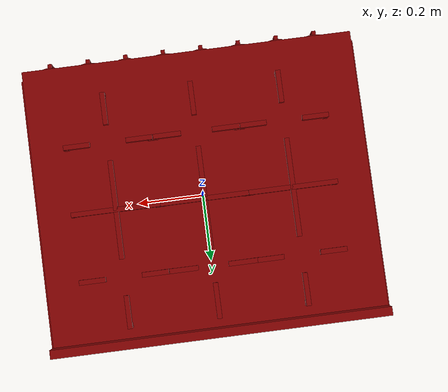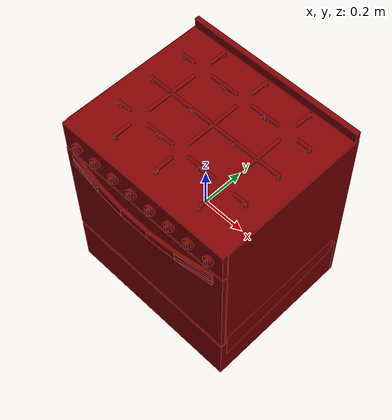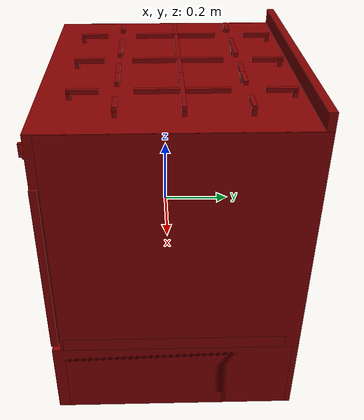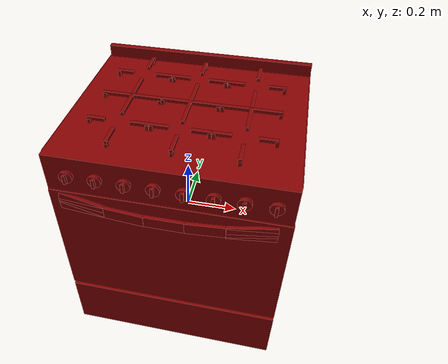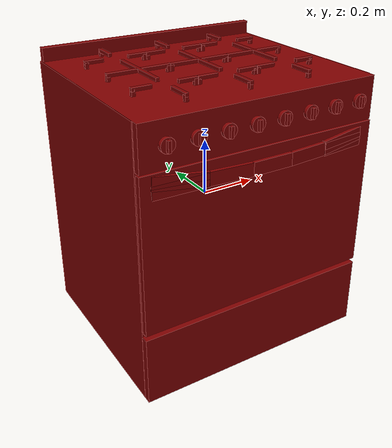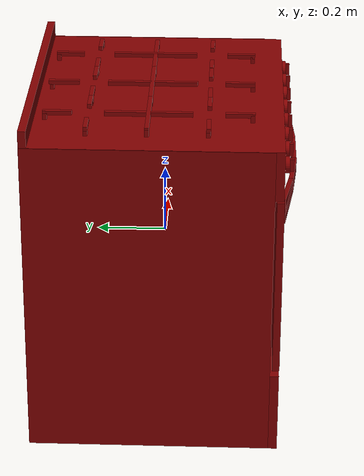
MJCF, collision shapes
<?xml version='1.0' encoding='UTF-8'?>
<mujoco model="model">
  <option timestep="0.002" gravity="0.0 0.0 -9.81"/>
  <compiler angle="radian"/>
  <asset>
    <mesh file="visuals/knob_front_center.obj" name="knob_front_center_vis"/>
    <mesh file="visuals/knob_front_left.obj" name="knob_front_left_vis"/>
    <mesh file="visuals/knob_front_right.obj" name="knob_front_right_vis"/>
    <mesh file="visuals/knob_rear_center.obj" name="knob_rear_center_vis"/>
    <mesh file="visuals/knob_rear_left.obj" name="knob_rear_left_vis"/>
    <mesh file="visuals/knob_rear_right.obj" name="knob_rear_right_vis"/>
    <mesh file="visuals/Body001.obj" name="Body001_vis"/>
    <mesh file="visuals/Door001.obj" name="Door001_vis"/>
    <mesh file="visuals/Door001_Clear.obj" name="Door001_Clear_vis"/>
    <mesh file="visuals/Knob001.obj" name="Knob001_vis"/>
    <mesh file="visuals/Knob002.obj" name="Knob002_vis"/>
    <mesh file="visuals/Shelf001.obj" name="Shelf001_vis"/>
    <mesh file="visuals/Shelf002.obj" name="Shelf002_vis"/>
    <texture file="visuals/T_BC001.png" name="Body001_material" type="2d"/>
    <material name="Body001_material" rgba="1 1 1 1.0" texture="Body001_material" shininess="0.4472135901451111" specular="2"/>
    <texture file="visuals/T_BC001.png" name="knob_front_center_material" type="2d"/>
    <material name="knob_front_center_material" rgba="1 1 1 1.0" texture="knob_front_center_material" shininess="0.4472135901451111" specular="0.3103448502657381"/>
    <texture file="visuals/T_BC001.png" name="knob_front_left_material" type="2d"/>
    <material name="knob_front_left_material" rgba="1 1 1 1.0" texture="knob_front_left_material" shininess="0.4472135901451111" specular="0.3103448502657381"/>
    <texture file="visuals/T_BC001.png" name="knob_front_right_material" type="2d"/>
    <material name="knob_front_right_material" rgba="1 1 1 1.0" texture="knob_front_right_material" shininess="0.4472135901451111" specular="0.3103448502657381"/>
    <texture file="visuals/T_BC001.png" name="knob_rear_center_material" type="2d"/>
    <material name="knob_rear_center_material" rgba="1 1 1 1.0" texture="knob_rear_center_material" shininess="0.4472135901451111" specular="0.3103448502657381"/>
    <texture file="visuals/T_BC001.png" name="knob_rear_left_material" type="2d"/>
    <material name="knob_rear_left_material" rgba="1 1 1 1.0" texture="knob_rear_left_material" shininess="0.4472135901451111" specular="0.3103448502657381"/>
    <texture file="visuals/T_BC001.png" name="knob_rear_right_material" type="2d"/>
    <material name="knob_rear_right_material" rgba="1 1 1 1.0" texture="knob_rear_right_material" shininess="0.4472135901451111" specular="0.3103448502657381"/>
    <texture file="visuals/T_BC001.png" name="Door001_material" type="2d"/>
    <material name="Door001_material" rgba="1 1 1 1.0" texture="Door001_material" shininess="0.4472135901451111" specular="1"/>
    <texture file="visuals/T_BC001.png" name="Door001_Clear_material" type="2d"/>
    <material name="Door001_Clear_material" rgba="1 1 1 0.5" texture="Door001_Clear_material" shininess="0.5" specular="0.3103448502657381"/>
    <texture file="visuals/T_BC001.png" name="Knob001_material" type="2d"/>
    <material name="Knob001_material" rgba="1 1 1 1.0" texture="Knob001_material" shininess="0.4472135901451111" specular="0.3103448502657381"/>
    <texture file="visuals/T_BC001.png" name="Knob002_material" type="2d"/>
    <material name="Knob002_material" rgba="1 1 1 1.0" texture="Knob002_material" shininess="0.4472135901451111" specular="0.3103448502657381"/>
    <texture file="visuals/T_BC001.png" name="Shelf001_material" type="2d"/>
    <material name="Shelf001_material" rgba="1 1 1 1.0" texture="Shelf001_material" shininess="0.4472135901451111" specular="2"/>
    <texture file="visuals/T_BC001.png" name="Shelf002_material" type="2d"/>
    <material name="Shelf002_material" rgba="1 1 1 1.0" texture="Shelf002_material" shininess="0.4472135901451111" specular="2"/>
  </asset>
  <default>
    <default class="visual">
      <geom conaffinity="0" contype="0" group="1" type="mesh"/>
    </default>
    <default class="collision">
      <geom group="0" rgba="0.5 0 0 0.5"/>
    </default>
    <default class="spawn">
      <geom group="0" rgba="1 1 1 0.5" contype="0" conaffinity="0"/>
      <site group="0" rgba="1 1 1 0.5"/>
    </default>
    <default class="region">
      <geom group="1" conaffinity="0" contype="0" rgba="0 1 0 0"/>
    </default>
  </default>
  <worldbody>
    <body>
      <body name="object">
        <geom mesh="Body001_vis" type="mesh" solimp="0.998 0.998 0.001" solref="0.001 1" friction="0.95 0.3 0.1" class="visual" material="Body001_material"/>
        <geom class="collision" type="box" pos="0.364420622587204 -0.07858794927597046 0.11972210556268692" size="0.018662435933947563 0.18144045770168304 0.0023834460880607367" quat="1.0 0.0 0.0 0.0" density="1000.0"/>
        <geom class="collision" type="box" pos="0.364420622587204 -0.07858794927597046 0.08483462780714035" size="0.018662435933947563 0.18144045770168304 0.0023834460880607367" quat="1.0 0.0 0.0 0.0" density="1000.0"/>
        <geom class="collision" type="box" pos="0.364420622587204 -0.07858794927597046 0.01778459921479225" size="0.018662435933947563 0.18144045770168304 0.0023834460880607367" quat="1.0 0.0 0.0 0.0" density="1000.0"/>
        <geom class="collision" type="box" pos="0.364420622587204 -0.07858794927597046 -0.049496907740831375" size="0.018662435933947563 0.18144045770168304 0.0023834460880607367" quat="1.0 0.0 0.0 0.0" density="1000.0"/>
        <geom class="collision" type="box" pos="-0.36823025345802307 -0.07858794927597046 0.11972210556268692" size="0.018662435933947563 0.18144045770168304 0.0023834460880607367" quat="1.0 0.0 0.0 0.0" density="1000.0"/>
        <geom class="collision" type="box" pos="-0.36823025345802307 -0.07858794927597046 0.01778459921479225" size="0.018662435933947563 0.18144045770168304 0.0023834460880607367" quat="1.0 0.0 0.0 0.0" density="1000.0"/>
        <geom class="collision" type="box" pos="-0.36823025345802307 -0.07858794927597046 -0.049496907740831375" size="0.018662435933947563 0.18144045770168304 0.0023834460880607367" quat="1.0 0.0 0.0 0.0" density="1000.0"/>
        <geom class="collision" type="box" pos="-0.366976261138916 -0.07858794927597046 0.08483462780714035" size="0.018662435933947563 0.18144045770168304 0.0023834460880607367" quat="1.0 0.0 0.0 0.0" density="1000.0"/>
        <geom class="collision" type="box" pos="-0.40804946422576904 0.032975368201732635 -0.02279110811650753" size="0.015683388337492943 0.34789374470710754 0.4722433090209961" quat="1.0 0.0 0.0 0.0" density="1000.0"/>
        <geom class="collision" type="box" pos="0.40709713101387024 0.03266469016671181 -0.022676851600408554" size="0.016239916905760765 0.3475830554962158 0.47212931513786316" quat="1.0 0.0 0.0 0.0" density="1000.0"/>
        <geom class="collision" type="box" pos="-0.0004993081092834473 0.011970818042755127 0.37617436051368713" size="0.42072170972824097 0.35166284441947937 0.07339657098054886" quat="1.0 0.0 0.0 0.0" density="1000.0"/>
        <geom class="collision" type="box" pos="0.0012759566307067871 0.3703576326370239 0.0013292527291923761" size="0.42017021775245667 0.010949005372822285 0.4954916536808014" quat="1.0 0.0 0.0 0.0" density="1000.0"/>
        <geom class="collision" type="box" pos="-2.117455005645752e-05 0.01138758659362793 -0.37255796790122986" size="0.42352452874183655 0.35225921869277954 0.1225961297750473" quat="1.0 0.0 0.0 0.0" density="1000.0"/>
        <geom class="collision" type="box" pos="-2.117455005645752e-05 0.01612207293510437 -0.3514452874660492" size="0.42352452874183655 0.32334092259407043 0.14354214072227478" quat="1.0 0.0 0.0 0.0" density="1000.0"/>
        <geom class="collision" type="box" pos="0.0012759556993842125 0.3319109082221985 -0.026910508051514626" size="0.42015162110328674 0.027977995574474335 0.46796897053718567" quat="1.0 0.0 0.0 0.0" density="1000.0"/>
        <geom class="collision" type="box" pos="-0.3896397054195404 -0.07899713516235352 0.03456701338291168" size="0.004897843115031719 0.18065761029720306 0.1435653269290924" quat="1.0 0.0 0.0 0.0" density="1000.0"/>
        <geom class="collision" type="box" pos="0.3866812288761139 -0.07899713516235352 0.034567102789878845" size="0.00489784637466073 0.18065761029720306 0.14356538653373718" quat="1.0 0.0 0.0 0.0" density="1000.0"/>
        <geom class="collision" type="box" pos="-0.0004993081092834473 0.011970818042755127 0.31831592321395874" size="0.3940332233905792 0.3293551504611969 0.046260178089141846" quat="1.0 0.0 0.0 0.0" density="1000.0"/>
        <geom class="collision" type="box" pos="-0.30060309171676636 -0.1308376044034958 0.470270574092865" size="0.03320878744125366 0.006129132118076086 0.006129132118076086" quat="1.0 0.0 0.0 0.0" density="1000.0"/>
        <geom class="collision" type="box" pos="-0.32762521505355835 -0.1308376044034958 0.4601711928844452" size="0.006129133980721235 0.006129132118076086 0.010349145159125328" quat="1.0 0.0 0.0 0.0" density="1000.0"/>
        <geom class="collision" type="box" pos="-0.22193697094917297 -0.21709318459033966 0.470270574092865" size="0.006129132118076086 0.040935102850198746 0.006129132118076086" quat="1.0 0.0 0.0 0.0" density="1000.0"/>
        <geom class="collision" type="box" pos="-0.22193697094917297 -0.25184163451194763 0.4601711928844452" size="0.006129133049398661 0.006129132118076086 0.010349145159125328" quat="1.0 0.0 0.0 0.0" density="1000.0"/>
        <geom class="collision" type="box" pos="-0.143728107213974 -0.1308376044034958 0.470270574092865" size="0.03320879116654396 0.006129143293946981 0.006129132118076086" quat="1.0 0.0 0.0 0.0" density="1000.0"/>
        <geom class="collision" type="box" pos="-0.11670596897602081 -0.1308376044034958 0.4601711928844452" size="0.006129135377705097 0.006129134446382523 0.010349145159125328" quat="1.0 0.0 0.0 0.0" density="1000.0"/>
        <geom class="collision" type="box" pos="0.07366536557674408 -0.1308376044034958 0.470270574092865" size="0.03491848334670067 0.006129044573754072 0.006129033397883177" quat="1.0 0.0 0.0 0.0" density="1000.0"/>
        <geom class="collision" type="box" pos="-0.10274513065814972 -0.1308376044034958 0.4601711928844452" size="0.006129137240350246 0.0061291358433663845 0.010349145159125328" quat="1.0 0.0 0.0 0.0" density="1000.0"/>
        <geom class="collision" type="box" pos="0.10326054692268372 -0.1308376044034958 0.4601711928844452" size="0.006129137240350246 0.0061291358433663845 0.010349145159125328" quat="1.0 0.0 0.0 0.0" density="1000.0"/>
        <geom class="collision" type="box" pos="0.11666572093963623 -0.1308376044034958 0.4601711928844452" size="0.006129137240350246 0.0061291358433663845 0.010349145159125328" quat="1.0 0.0 0.0 0.0" density="1000.0"/>
        <geom class="collision" type="box" pos="0.14367786049842834 -0.1308375746011734 0.470270574092865" size="0.033241767436265945 0.006129029206931591 0.006129014305770397" quat="1.0 0.0 0.0 0.0" density="1000.0"/>
        <geom class="collision" type="box" pos="0.3280797600746155 -0.1308376044034958 0.4601711928844452" size="0.006129139102995396 0.006129138171672821 0.010349145159125328" quat="1.0 0.0 0.0 0.0" density="1000.0"/>
        <geom class="collision" type="box" pos="0.30106762051582336 -0.13083763420581818 0.470270574092865" size="0.033241767436265945 0.006129029672592878 0.006129020359367132" quat="1.0 0.0 0.0 0.0" density="1000.0"/>
        <geom class="collision" type="box" pos="0.2219962477684021 -0.21709318459033966 0.470270574092865" size="0.006129132118076086 0.040935102850198746 0.006129132118076086" quat="1.0 0.0 0.0 0.0" density="1000.0"/>
        <geom class="collision" type="box" pos="0.2219962477684021 -0.25184163451194763 0.4601711928844452" size="0.006129133049398661 0.006129132118076086 0.010349145159125328" quat="1.0 0.0 0.0 0.0" density="1000.0"/>
        <geom class="collision" type="box" pos="-0.00018443413136992604 -0.21558159589767456 0.470270574092865" size="0.006129133049398661 0.042494818568229675 0.006129029206931591" quat="1.0 0.0 0.0 0.0" density="1000.0"/>
        <geom class="collision" type="box" pos="-0.00018443167209625244 -0.25184163451194763 0.4601711928844452" size="0.006129133049398661 0.006129132118076086 0.010349145159125328" quat="1.0 0.0 0.0 0.0" density="1000.0"/>
        <geom class="collision" type="box" pos="-0.32762521505355835 0.03805355727672577 0.4601711928844452" size="0.006129133980721235 0.006129132118076086 0.010349145159125328" quat="1.0 0.0 0.0 0.0" density="1000.0"/>
        <geom class="collision" type="box" pos="-0.22209370136260986 0.03805355727672577 0.470270574092865" size="0.11157438904047012 0.006129143293946981 0.006129132118076086" quat="1.0 0.0 0.0 0.0" density="1000.0"/>
        <geom class="collision" type="box" pos="-0.11670596897602081 0.03805355727672577 0.4601711928844452" size="0.006129135377705097 0.006129134446382523 0.010349145159125328" quat="1.0 0.0 0.0 0.0" density="1000.0"/>
        <geom class="collision" type="box" pos="-0.22149862349033356 0.038120053708553314 0.470270574092865" size="0.006129167508333921 0.12360835820436478 0.006129132118076086" quat="1.0 0.0 0.0 0.0" density="1000.0"/>
        <geom class="collision" type="box" pos="-0.10468415915966034 0.03805355727672577 0.4601711928844452" size="0.006129133980721235 0.006129132118076086 0.010349145159125328" quat="1.0 0.0 0.0 0.0" density="1000.0"/>
        <geom class="collision" type="box" pos="0.0028169474098831415 0.03805353865027428 0.470270574092865" size="0.11284878849983215 0.006129076238721609 0.006129068322479725" quat="1.0 0.0 0.0 0.0" density="1000.0"/>
        <geom class="collision" type="box" pos="0.10274618864059448 0.03805355727672577 0.4601711928844452" size="0.006129135377705097 0.006129134446382523 0.010349145159125328" quat="1.0 0.0 0.0 0.0" density="1000.0"/>
        <geom class="collision" type="box" pos="0.0003596395254135132 0.2928311824798584 0.470270574092865" size="0.00612907949835062 0.04435423016548157 0.006129132118076086" quat="1.0 0.0 0.0 0.0" density="1000.0"/>
        <geom class="collision" type="box" pos="0.11737358570098877 0.03805355727672577 0.4601711928844452" size="0.006129133980721235 0.006129132118076086 0.010349145159125328" quat="1.0 0.0 0.0 0.0" density="1000.0"/>
        <geom class="collision" type="box" pos="0.22290509939193726 0.03805355727672577 0.470270574092865" size="0.11157438904047012 0.006129143293946981 0.006129132118076086" quat="1.0 0.0 0.0 0.0" density="1000.0"/>
        <geom class="collision" type="box" pos="0.3282928466796875 0.03805355727672577 0.4601711928844452" size="0.006129135377705097 0.006129134446382523 0.010349145159125328" quat="1.0 0.0 0.0 0.0" density="1000.0"/>
        <geom class="collision" type="box" pos="0.22208474576473236 0.038120053708553314 0.470270574092865" size="0.006129167508333921 0.12360835820436478 0.006129132118076086" quat="1.0 0.0 0.0 0.0" density="1000.0"/>
        <geom class="collision" type="box" pos="0.3010576367378235 0.20676814019680023 0.470270574092865" size="0.03320879116654396 0.006129143293946981 0.006129132118076086" quat="1.0 0.0 0.0 0.0" density="1000.0"/>
        <geom class="collision" type="box" pos="0.3280797600746155 0.20676811039447784 0.4601711928844452" size="0.006129135377705097 0.006129134446382523 0.010349145159125328" quat="1.0 0.0 0.0 0.0" density="1000.0"/>
        <geom class="collision" type="box" pos="0.2223915159702301 0.2930237054824829 0.470270574092865" size="0.006129145622253418 0.040935106575489044 0.006129132118076086" quat="1.0 0.0 0.0 0.0" density="1000.0"/>
        <geom class="collision" type="box" pos="0.2223915159702301 0.3277721405029297 0.4601711928844452" size="0.00612913491204381 0.006129134446382523 0.010349145159125328" quat="1.0 0.0 0.0 0.0" density="1000.0"/>
        <geom class="collision" type="box" pos="0.14418265223503113 0.20676814019680023 0.470270574092865" size="0.03320879116654396 0.0061291540041565895 0.006129132118076086" quat="1.0 0.0 0.0 0.0" density="1000.0"/>
        <geom class="collision" type="box" pos="0.11716051399707794 0.20676814019680023 0.4601711928844452" size="0.006129137240350246 0.0061291358433663845 0.010349145159125328" quat="1.0 0.0 0.0 0.0" density="1000.0"/>
        <geom class="collision" type="box" pos="0.07314195483922958 0.20676816999912262 0.470270574092865" size="0.03625023365020752 0.006129126064479351 0.006129097193479538" quat="1.0 0.0 0.0 0.0" density="1000.0"/>
        <geom class="collision" type="box" pos="0.10319967567920685 0.20676814019680023 0.4601711928844452" size="0.006129139102995396 0.006129138171672821 0.010349145159125328" quat="1.0 0.0 0.0 0.0" density="1000.0"/>
        <geom class="collision" type="box" pos="-0.10280600190162659 0.20676816999912262 0.4601711928844452" size="0.006129139102995396 0.006129138171672821 0.010349145159125328" quat="1.0 0.0 0.0 0.0" density="1000.0"/>
        <geom class="collision" type="box" pos="-0.1162111759185791 0.20676816999912262 0.4601711928844452" size="0.006129139102995396 0.006129138171672821 0.010349145159125328" quat="1.0 0.0 0.0 0.0" density="1000.0"/>
        <geom class="collision" type="box" pos="-0.1432233303785324 0.20676814019680023 0.470270574092865" size="0.033241767436265945 0.006129108835011721 0.006129099056124687" quat="1.0 0.0 0.0 0.0" density="1000.0"/>
        <geom class="collision" type="box" pos="-0.32762521505355835 0.20676816999912262 0.4601711928844452" size="0.006129140965640545 0.00612914003431797 0.010349145159125328" quat="1.0 0.0 0.0 0.0" density="1000.0"/>
        <geom class="collision" type="box" pos="-0.30061307549476624 0.2067681849002838 0.470270574092865" size="0.033241771161556244 0.006129109300673008 0.006129105109721422" quat="1.0 0.0 0.0 0.0" density="1000.0"/>
        <geom class="collision" type="box" pos="-0.22154170274734497 0.2930237650871277 0.470270574092865" size="0.006129145622253418 0.040935106575489044 0.006129132118076086" quat="1.0 0.0 0.0 0.0" density="1000.0"/>
        <geom class="collision" type="box" pos="-0.22154170274734497 0.32777220010757446 0.4601711928844452" size="0.00612913491204381 0.006129134446382523 0.010349145159125328" quat="1.0 0.0 0.0 0.0" density="1000.0"/>
        <geom class="collision" type="box" pos="-0.0004001929482910782 0.03584869205951691 0.470270574092865" size="0.006129175424575806 0.12906001508235931 0.006129113957285881" quat="1.0 0.0 0.0 0.0" density="1000.0"/>
        <geom class="collision" type="box" pos="0.0006389819900505245 0.3277721703052521 0.4601711928844452" size="0.00612913491204381 0.006129134446382523 0.010349145159125328" quat="1.0 0.0 0.0 0.0" density="1000.0"/>
        <geom class="collision" type="cylinder" pos="-0.221892312169075 -0.13137805461883545 0.4425704777240753" size="0.03738420829176903 0.006588577758520842" quat="1.0 0.0 0.0 0.0" density="1000.0"/>
        <geom class="collision" type="cylinder" pos="0.22195810079574585 -0.13078992068767548 0.44160130620002747" size="0.027933401986956596 0.006970142014324665" quat="1.0 0.0 0.0 0.0" density="1000.0"/>
        <geom class="collision" type="cylinder" pos="0.22195810079574585 0.20676130056381226 0.4401457607746124" size="0.03470541164278984 0.008442875929176807" quat="1.0 0.0 0.0 0.0" density="1000.0"/>
        <geom class="collision" type="cylinder" pos="-0.22235612571239471 0.20676130056381226 0.4420042634010315" size="0.03470541164278984 0.006646550726145506" quat="1.0 0.0 0.0 0.0" density="1000.0"/>
        <geom class="collision" type="box" pos="-0.07491660118103027 -0.1308376044034958 0.470270574092865" size="0.03491848334670067 0.006129140965640545 0.006129125598818064" quat="1.0 0.0 0.0 0.0" density="1000.0"/>
        <geom class="collision" type="box" pos="-0.07441318780183792 0.20676816999912262 0.470270574092865" size="0.03625023365020752 0.006129181012511253 0.0061291279271245" quat="1.0 0.0 0.0 0.0" density="1000.0"/>
        <geom class="collision" type="cylinder" pos="-0.0009098519221879542 -0.1307675987482071 0.4419507384300232" size="0.03738420829176903 0.006892111152410507" quat="1.0 0.0 0.0 0.0" density="1000.0"/>
        <geom class="collision" type="cylinder" pos="-0.0009098519221879542 0.20558972656726837 0.44114747643470764" size="0.03738420829176903 0.007792823947966099" quat="1.0 0.0 0.0 0.0" density="1000.0"/>
        <body name="knob_front_center">
          <joint axis="0.0 -1.0 0.0" pos="0.059815842658281326 -0.35055309534072876 0.37707966566085815" limited="true" name="knob_front_center_joint" range="0.0 3.141592653589793" type="hinge" damping="0.05" armature="0.001"/>
          <geom mesh="knob_front_center_vis" type="mesh" solimp="0.998 0.998 0.001" solref="0.001 1" friction="0.95 0.3 0.1" class="visual" material="knob_front_center_material"/>
          <geom class="collision" type="cylinder" pos="0.0597429983317852 -0.3481437563896179 0.3768796920776367" size="0.02347167767584324 0.006403839215636253" quat="0.7071067094802856 0.70710688829422 -1.5700929612083792e-16 2.2148514736588345e-23" density="1000.0"/>
          <geom class="collision" type="box" pos="0.05910010263323784 -0.35807836055755615 0.3764302730560303" size="0.005083238240331411 0.007866146042943 0.018165934830904007" quat="1.0 0.0 0.0 0.0" density="1000.0" name="knob_front_center_main"/>
        </body>
        <body name="knob_front_left">
          <joint axis="0.0 -1.0 0.0" pos="-0.33796530961990356 -0.3505529761314392 0.3770795464515686" limited="true" name="knob_front_left_joint" range="0.0 3.141592653589793" type="hinge" damping="0.05" armature="0.001"/>
          <geom mesh="knob_front_left_vis" type="mesh" solimp="0.998 0.998 0.001" solref="0.001 1" friction="0.95 0.3 0.1" class="visual" material="knob_front_left_material"/>
          <geom class="collision" type="cylinder" pos="-0.33822208642959595 -0.3481437563896179 0.37680575251579285" size="0.02347167767584324 0.006403839215636253" quat="0.7071067094802856 0.70710688829422 -1.5700929612083792e-16 2.2148514736588345e-23" density="1000.0"/>
          <geom class="collision" type="box" pos="-0.3388649821281433 -0.35807836055755615 0.3763563334941864" size="0.005083238240331411 0.007866160944104195 0.01816595159471035" quat="1.0 0.0 0.0 0.0" density="1000.0" name="knob_front_left_main"/>
        </body>
        <body name="knob_front_right">
          <joint axis="0.0 -1.0 0.0" pos="0.35715579986572266 -0.35055306553840637 0.37707966566085815" limited="true" name="knob_front_right_joint" range="0.0 3.141592653589793" type="hinge" damping="0.05" armature="0.001"/>
          <geom mesh="knob_front_right_vis" type="mesh" solimp="0.998 0.998 0.001" solref="0.001 1" friction="0.95 0.3 0.1" class="visual" material="knob_front_right_material"/>
          <geom class="collision" type="cylinder" pos="0.35743337869644165 -0.3481437563896179 0.3770768642425537" size="0.02347167767584324 0.006403839215636253" quat="0.7071067094802856 0.70710688829422 -1.5700929612083792e-16 2.2148514736588345e-23" density="1000.0"/>
          <geom class="collision" type="box" pos="0.35679036378860474 -0.35807836055755615 0.37662744522094727" size="0.005083238240331411 0.007866166532039642 0.018165959045290947" quat="1.0 0.0 0.0 0.0" density="1000.0" name="knob_front_right_main"/>
        </body>
        <body name="knob_rear_center">
          <joint axis="0.0 -1.0 0.0" pos="0.1586380898952484 -0.35055309534072876 0.37707966566085815" limited="true" name="knob_rear_center_joint" range="0.0 3.141592653589793" type="hinge" damping="0.05" armature="0.001"/>
          <geom mesh="knob_rear_center_vis" type="mesh" solimp="0.998 0.998 0.001" solref="0.001 1" friction="0.95 0.3 0.1" class="visual" material="knob_rear_center_material"/>
          <geom class="collision" type="cylinder" pos="0.15876567363739014 -0.3481437563896179 0.37673771381378174" size="0.02347167767584324 0.006403839215636253" quat="0.7071067094802856 0.70710688829422 -1.5700929612083792e-16 2.2148514736588345e-23" density="1000.0"/>
          <geom class="collision" type="box" pos="0.15812277793884277 -0.35807836055755615 0.3762882947921753" size="0.005083238240331411 0.00786657352000475 0.018166428431868553" quat="1.0 0.0 0.0 0.0" density="1000.0" name="knob_rear_center_main"/>
        </body>
        <body name="knob_rear_left">
          <joint axis="0.0 -1.0 0.0" pos="-0.23807893693447113 -0.3505529761314392 0.3770795464515686" limited="true" name="knob_rear_left_joint" range="0.0 3.141592653589793" type="hinge" damping="0.05" armature="0.001"/>
          <geom mesh="knob_rear_left_vis" type="mesh" solimp="0.998 0.998 0.001" solref="0.001 1" friction="0.95 0.3 0.1" class="visual" material="knob_rear_left_material"/>
          <geom class="collision" type="cylinder" pos="-0.2382066696882248 -0.3481437563896179 0.3770768642425537" size="0.02347167767584324 0.006403839215636253" quat="0.7071067094802856 0.70710688829422 -1.5700929612083792e-16 2.2148514736588345e-23" density="1000.0"/>
          <geom class="collision" type="box" pos="-0.23884956538677216 -0.35807836055755615 0.37662744522094727" size="0.005083238240331411 0.007866133004426956 0.018165919929742813" quat="1.0 0.0 0.0 0.0" density="1000.0" name="knob_rear_left_main"/>
        </body>
        <body name="knob_rear_right">
          <joint axis="0.0 -1.0 0.0" pos="0.2576211094856262 -0.35055315494537354 0.37707966566085815" limited="true" name="knob_rear_right_joint" range="0.0 3.141592653589793" type="hinge" damping="0.05" armature="0.001"/>
          <geom mesh="knob_rear_right_vis" type="mesh" solimp="0.998 0.998 0.001" solref="0.001 1" friction="0.95 0.3 0.1" class="visual" material="knob_rear_right_material"/>
          <geom class="collision" type="cylinder" pos="0.257697194814682 -0.3481437563896179 0.3767811059951782" size="0.02347167767584324 0.006403839215636253" quat="0.7071067094802856 0.70710688829422 -1.5700929612083792e-16 2.2148514736588345e-23" density="1000.0"/>
          <geom class="collision" type="box" pos="0.2570541799068451 -0.35807836055755615 0.3763316869735718" size="0.005083238240331411 0.007866157218813896 0.01816594786942005" quat="1.0 0.0 0.0 0.0" density="1000.0" name="knob_rear_right_main"/>
        </body>
        <body name="Door001">
          <joint axis="1.0 0.0 0.0" pos="-8.195638656616211e-08 -0.3297235369682312 -0.22697541117668152" limited="true" name="Door001_joint" range="0.0 1.5707963267948966" type="hinge" damping="1" frictionloss="1" armature=".01" stiffness="1" springref="-1.5"/>
          <geom mesh="Door001_vis" type="mesh" solimp="0.998 0.998 0.001" solref="0.001 1" friction="0.95 0.3 0.1" class="visual" material="Door001_material"/>
          <geom class="collision" type="box" pos="-1.0455382617296733e-17 -0.3308943808078766 0.03300362080335617" size="0.42301270365715027 0.010427734814584255 0.265535831451416" quat="1.0 0.0 0.0 0.0" density="1000.0"/>
          <geom class="collision" type="box" pos="-4.022417191445313e-17 -0.37475350499153137 0.25381845235824585" size="0.07205874472856522 0.006408423651009798 0.022065896540880203" quat="1.0 0.0 0.0 0.0" density="1000.0"/>
          <geom class="collision" type="box" pos="0.14082938432693481 -0.36982446908950806 0.25381845235824585" size="0.07205874472856522 0.006408423651009798 0.022065896540880203" quat="0.9993314743041992 0.0 0.0 0.036559365689754486" density="1000.0"/>
          <geom class="collision" type="box" pos="0.29127034544944763 -0.3541572093963623 0.2604515254497528" size="0.08548154681921005 0.006435616873204708 0.022082984447479248" quat="0.997063398361206 -0.0019342349842190742 -0.02690824307501316 0.07167156785726547" density="1000.0"/>
          <geom class="collision" type="box" pos="0.2916928231716156 -0.3541572093963623 0.24904434382915497" size="0.08548154681921005 0.006435617338865995 0.022082984447479248" quat="0.9972850680351257 0.0012068960350006819 0.016789782792329788 0.071687713265419" density="1000.0"/>
          <geom class="collision" type="box" pos="-0.1430308222770691 -0.36958226561546326 0.25381845235824585" size="0.07205874472856522 0.006408423651009798 0.022065896540880203" quat="0.9991061091423035 0.0 -0.0 -0.042272429913282394" density="1000.0"/>
          <geom class="collision" type="box" pos="-0.30009153485298157 -0.35078155994415283 0.2621566951274872" size="0.08729562163352966 0.006416336167603731 0.022058529779314995" quat="0.9964611530303955 -0.0026375120505690575 0.04486234486103058 -0.07103268057107925" density="1000.0"/>
          <geom class="collision" type="box" pos="-0.30030277371406555 -0.35078155994415283 0.24715836346149445" size="0.08729562908411026 0.006416336167603731 0.022058531641960144" quat="0.9969912767410278 0.0027626187074929476 -0.030914876610040665 -0.07102814316749573" density="1000.0"/>
          <body name="Door001_Clear">
            <geom mesh="Door001_Clear_vis" type="mesh" solimp="0.998 0.998 0.001" solref="0.001 1" friction="0.95 0.3 0.1" class="visual" material="Door001_Clear_material"/>
          </body>
        </body>
        <body name="Knob001">
          <joint axis="0.0 1.0 0.0" pos="-0.1386459618806839 -0.35055306553840637 0.37707966566085815" limited="true" name="Knob001_joint" range="0.0 3.2637657012293966" type="hinge" damping="0.05" armature="0.001"/>
          <geom mesh="Knob001_vis" type="mesh" solimp="0.998 0.998 0.001" solref="0.001 1" friction="0.95 0.3 0.1" class="visual" material="Knob001_material"/>
          <geom class="collision" type="cylinder" pos="-0.1382790207862854 -0.3481437563896179 0.3769782781600952" size="0.02347167767584324 0.006403839215636253" quat="0.7071067094802856 0.70710688829422 -1.5700929612083792e-16 2.2148514736588345e-23" density="1000.0"/>
          <geom class="collision" type="box" pos="-0.13892191648483276 -0.35807836055755615 0.37652885913848877" size="0.005083238240331411 0.00786617025732994 0.018165962770581245" quat="1.0 0.0 0.0 0.0" density="1000.0"/>
        </body>
        <body name="Knob002">
          <joint axis="0.0 1.0 0.0" pos="-0.039293479174375534 -0.35055309534072876 0.37707966566085815" limited="true" name="Knob002_joint" range="0.0 3.979350694547071" type="hinge" damping="0.05" armature="0.001"/>
          <geom mesh="Knob002_vis" type="mesh" solimp="0.998 0.998 0.001" solref="0.001 1" friction="0.95 0.3 0.1" class="visual" material="Knob002_material"/>
          <geom class="collision" type="cylinder" pos="-0.03930022194981575 -0.3481437563896179 0.3771754801273346" size="0.02347167767584324 0.006403839215636253" quat="0.7071067094802856 0.70710688829422 -1.5700929612083792e-16 2.2148514736588345e-23" density="1000.0"/>
          <geom class="collision" type="box" pos="-0.03994311764836311 -0.35807836055755615 0.37672606110572815" size="0.005083238240331411 0.007866177707910538 0.01816597208380699" quat="1.0 0.0 0.0 0.0" density="1000.0"/>
        </body>
        <body name="Shelf001">
          <joint axis="0.0 -1.0 0.0" pos="0.0005266011576168239 -0.07821674644947052 0.09464754909276962" limited="true" name="Shelf001_joint" range="0.0 0.4" type="slide" damping="1" frictionloss="1" armature=".01" stiffness="0.05"/>
          <geom mesh="Shelf001_vis" type="mesh" solimp="0.998 0.998 0.001" solref="0.001 1" friction="0.95 0.3 0.1" class="visual" material="Shelf001_material"/>
          <geom class="collision" type="box" pos="0.0 -0.07858794927597046 0.09243746101856232" size="0.3687414228916168 0.20843133330345154 0.004342894069850445" quat="1.0 0.0 0.0 0.0" density="1000.0"/>
        </body>
        <body name="Shelf002">
          <joint axis="0.0 -1.0 0.0" pos="0.0006710498710162938 -0.07821673899888992 -0.04004359245300293" limited="true" name="Shelf002_joint" range="0.0 0.4" type="slide" damping="1" frictionloss="1" armature=".01" stiffness="0.05"/>
          <geom mesh="Shelf002_vis" type="mesh" solimp="0.998 0.998 0.001" solref="0.001 1" friction="0.95 0.3 0.1" class="visual" material="Shelf002_material"/>
          <geom class="collision" type="box" pos="0.0 -0.07858794927597046 -0.041873179376125336" size="0.3603268265724182 0.20843133330345154 0.004497503861784935" quat="1.0 0.0 0.0 0.0" density="1000.0"/>
        </body>
        <site type="cylinder" rgba="0.3 0.4 1 0.5" size="0.038127124309539795 0.006608123891055584" pos="-0.22235025465488434 0.2064211517572403 0.4420424997806549" name="burner_on_rear_left"/>
        <site type="cylinder" rgba="0.3 0.4 1 0.5" size="0.03225819393992424 0.006810537539422512" pos="0.2224230170249939 0.20680391788482666 0.441832035779953" name="burner_on_rear_right"/>
        <site type="cylinder" rgba="0.3 0.4 1 0.5" size="0.0357445627450943 0.006659638602286577" pos="-0.2220529168844223 -0.1313340812921524 0.4425513744354248" name="burner_on_front_left"/>
        <site type="cylinder" rgba="0.3 0.4 1 0.5" size="0.05448267608880997 0.006884873379021883" pos="-0.0007542166276834905 -0.1292695850133896 0.44209498167037964" name="burner_on_front_center"/>
        <site type="cylinder" rgba="0.3 0.4 1 0.5" size="0.024039912968873978 0.0057578058913350105" pos="0.22217817604541779 -0.13104957342147827 0.44279056787490845" name="burner_on_front_right"/>
        <geom class="region" name="reg_int" type="box" pos="-0.0013323426246643066 0.002783253788948059 0.031440310180187225" size="0.3900095224380493 0.3012464791536331 0.2396806851029396"/>
        <site type="cylinder" rgba="0.3 0.4 1 0.5" size="0.04445645958185196 0.008794458582997322" pos="-0.000635088246781379 0.2056959867477417 0.440105140209198" name="burner_on_rear_center"/>
        <site name="burner_rear_left_place_site" type="cylinder" rgba="0.3 0.4 1 0" size="0.038127124309539795 0.006608123891055584" pos="-0.22235025465488434 0.2064211517572403 0.4420424997806549"/>
        <site name="burner_rear_right_place_site" type="cylinder" rgba="0.3 0.4 1 0" size="0.03225819393992424 0.006810537539422512" pos="0.2224230170249939 0.20680391788482666 0.441832035779953"/>
        <site name="burner_front_left_place_site" type="cylinder" rgba="0.3 0.4 1 0" size="0.0357445627450943 0.006659638602286577" pos="-0.2220529168844223 -0.1313340812921524 0.4425513744354248"/>
        <site name="burner_front_center_place_site" type="cylinder" rgba="0.3 0.4 1 0" size="0.05448267608880997 0.006884873379021883" pos="-0.0007542166276834905 -0.1292695850133896 0.44209498167037964"/>
        <site name="burner_front_right_place_site" type="cylinder" rgba="0.3 0.4 1 0" size="0.024039912968873978 0.0057578058913350105" pos="0.22217817604541779 -0.13104957342147827 0.44279056787490845"/>
        <site name="burner_rear_center_place_site" type="cylinder" rgba="0.3 0.4 1 0" size="0.04445645958185196 0.008794458582997322" pos="-0.000635088246781379 0.2056959867477417 0.440105140209198"/>
        <geom class="region" name="reg_main" type="box" pos="0.0 0.019781526178121567 -0.02282063290476799" size="0.42387855052948 0.3615770936012268 0.4724254906177521"/>
      </body>
    </body>
  </worldbody>
  <actuator>
    <motor name="knob_front_center_joint_actuator" joint="knob_front_center_joint" gear="10"/>
    <motor name="knob_front_left_joint_actuator" joint="knob_front_left_joint" gear="10"/>
    <motor name="knob_front_right_joint_actuator" joint="knob_front_right_joint" gear="10"/>
    <motor name="knob_rear_center_joint_actuator" joint="knob_rear_center_joint" gear="10"/>
    <motor name="knob_rear_left_joint_actuator" joint="knob_rear_left_joint" gear="10"/>
    <motor name="knob_rear_right_joint_actuator" joint="knob_rear_right_joint" gear="10"/>
    <motor name="Door001_joint_actuator" joint="Door001_joint" gear="50"/>
    <motor name="Knob001_joint_actuator" joint="Knob001_joint" gear="50"/>
    <motor name="Knob002_joint_actuator" joint="Knob002_joint" gear="50"/>
    <motor name="Shelf001_joint_actuator" joint="Shelf001_joint" gear="50"/>
    <motor name="Shelf002_joint_actuator" joint="Shelf002_joint" gear="50"/>
  </actuator>
</mujoco>
